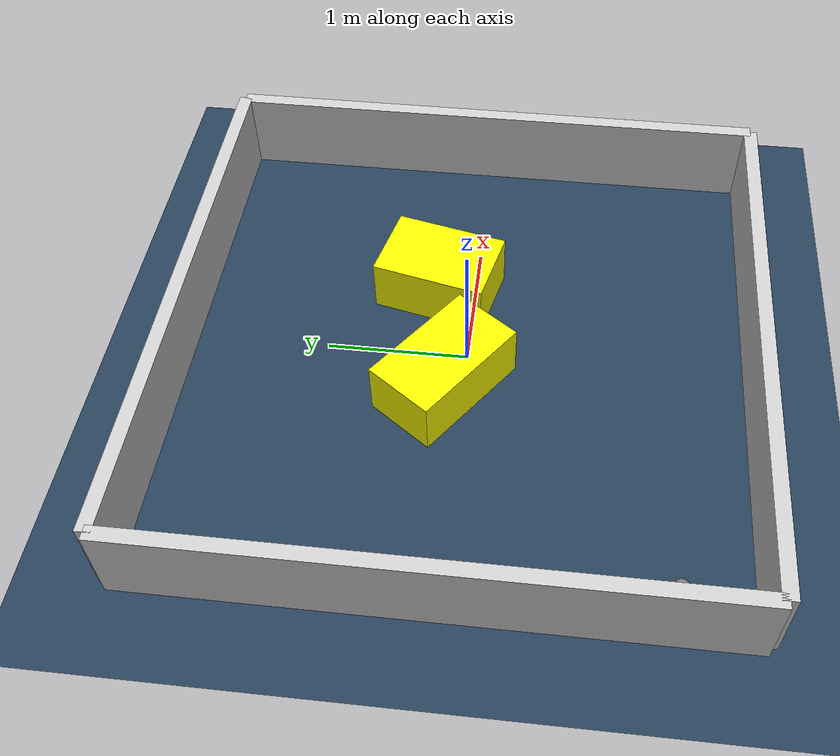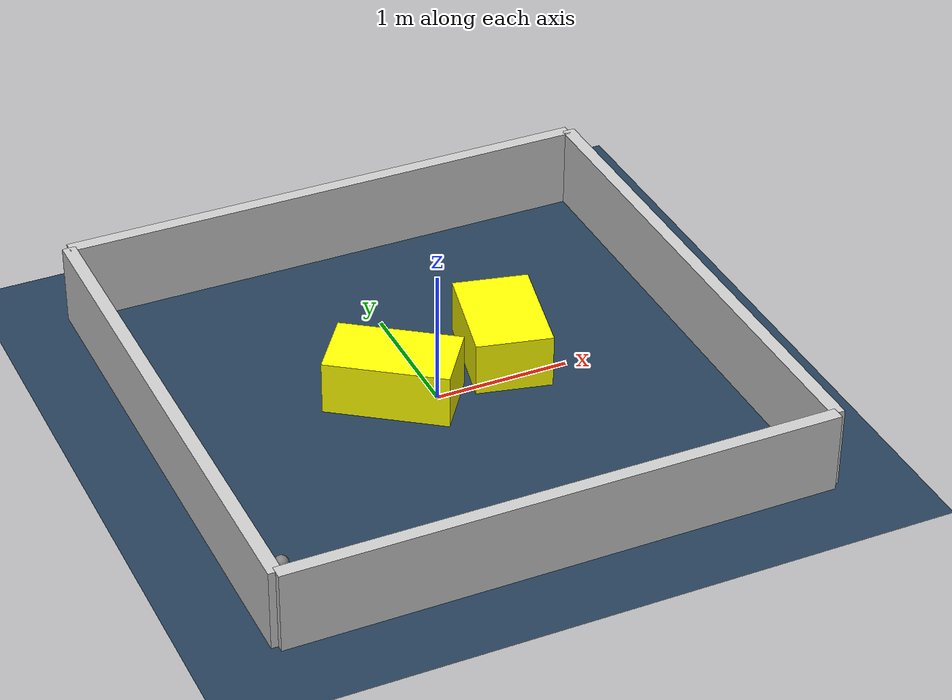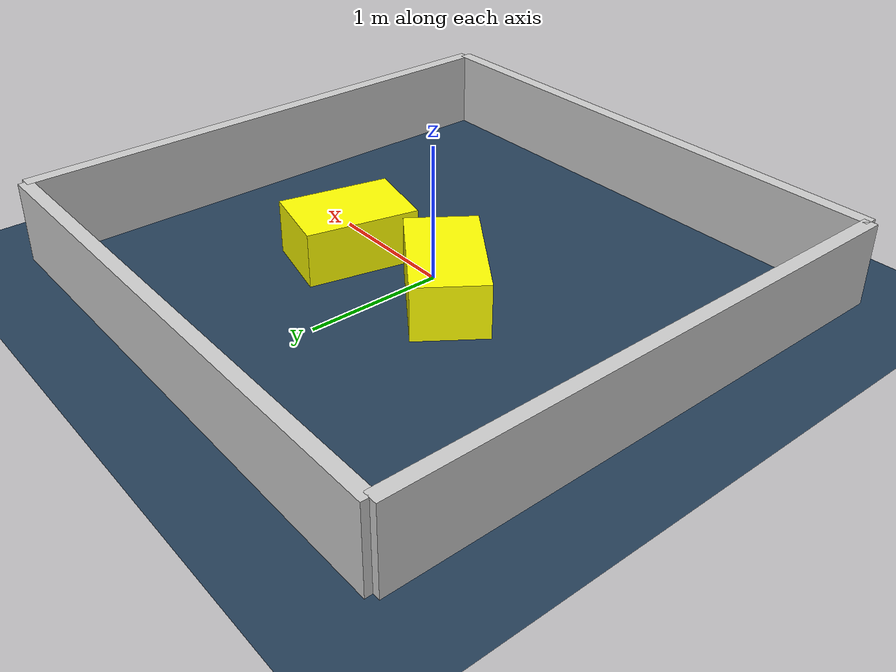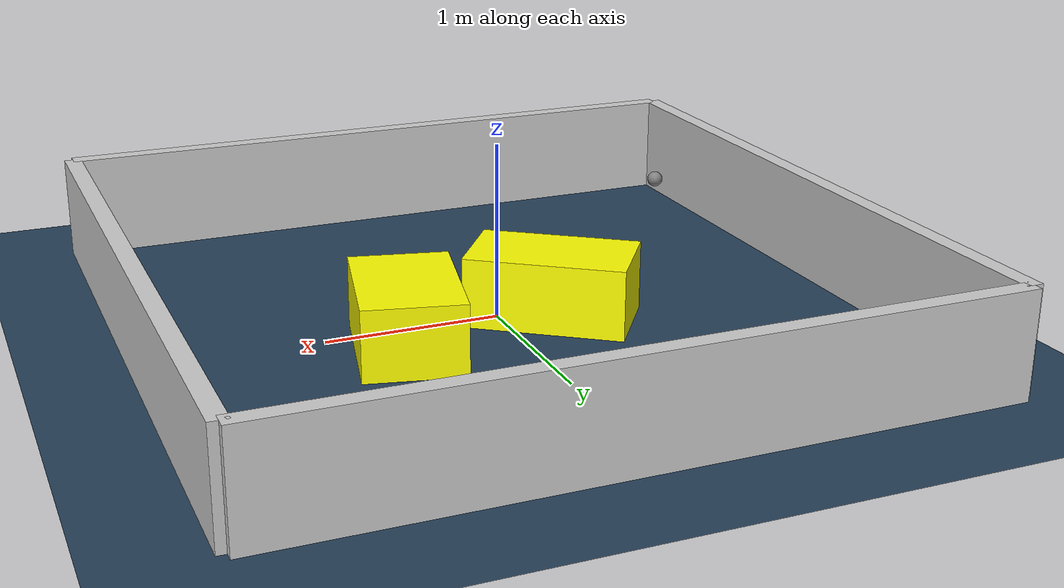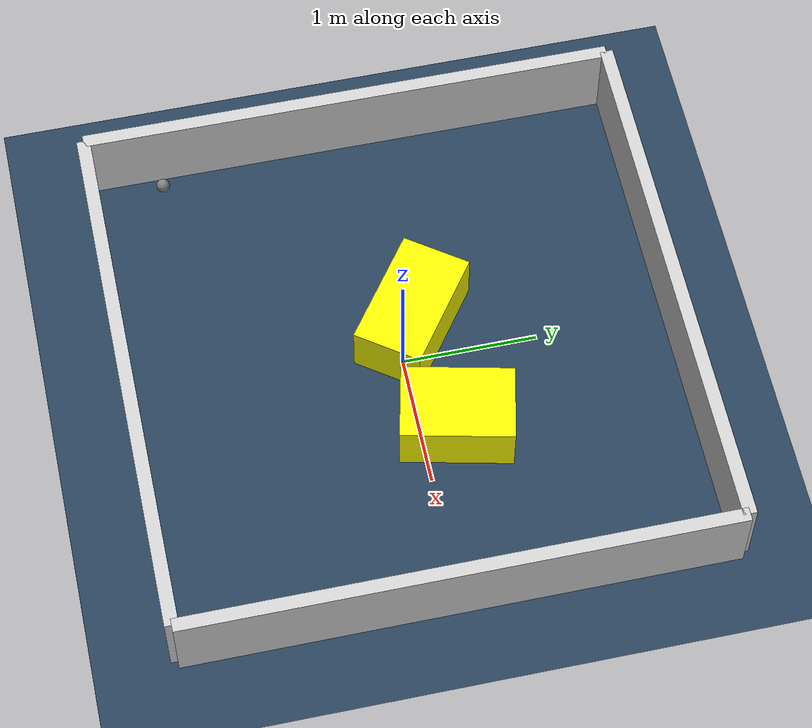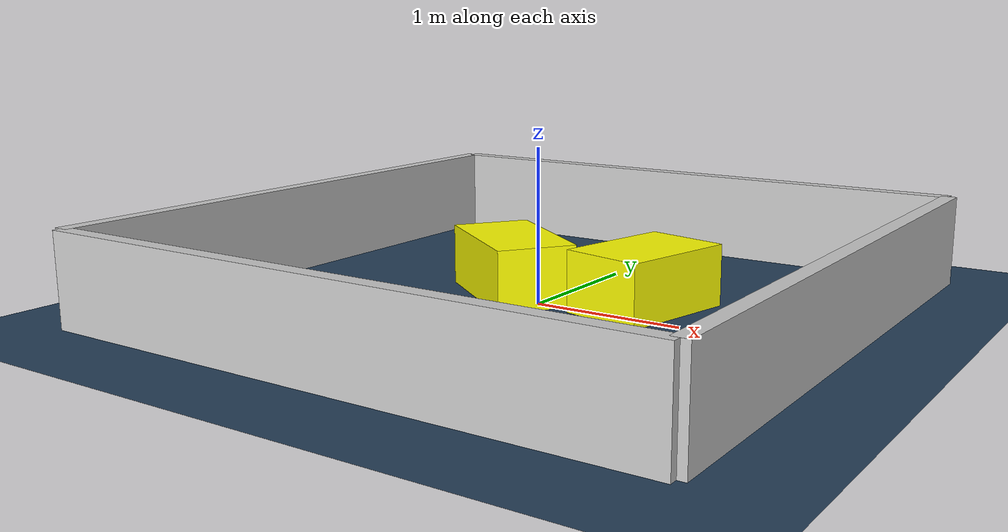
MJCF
<?xml version="1.0" ?>
<mujoco model="generated_environment">
  <option timestep="0.01" integrator="RK4" cone="elliptic"/>
  <default>
    <geom density="1"/>
  </default>
  <asset>
    <texture builtin="gradient" height="3072" rgb1="0.3 0.5 0.7" rgb2="0 0 0" type="skybox" width="512"/>
    <texture builtin="checker" height="300" mark="edge" markrgb="0.8 0.8 0.8" name="groundplane" rgb1="0.2 0.3 0.4" rgb2="0.1 0.2 0.3" type="2d" width="300"/>
    <material name="groundplane" reflectance="0.2" texrepeat="5 5" texture="groundplane" texuniform="true"/>
    <material name="robot" rgba="0.0 1.0 0.0 1"/>
  </asset>
  <worldbody>
    <light dir="0 0 -1" directional="true" pos="0 0 1.5"/>
    <geom condim="4" friction="1.0 0.005 0.001" material="groundplane" name="floor" size="0 0 0.05" type="plane"/>
    <body name="walls">
      <geom name="wall_1" condim="4" pos="-2.0 0.0 0.3" rgba="0.800000011920929 0.800000011920929 0.800000011920929 1.0" size="0.05 2.0 0.3" type="box"/>
      <geom name="wall_2" condim="4" pos="2.0 0.0 0.3" rgba="0.800000011920929 0.800000011920929 0.800000011920929 1.0" size="0.05 2.0 0.3" type="box"/>
      <geom name="wall_3" condim="4" pos="0.0 -2.0 0.3" rgba="0.800000011920929 0.800000011920929 0.800000011920929 1.0" size="2.0 0.05 0.3" type="box"/>
      <geom name="wall_4" condim="4" pos="0.0 2.0 0.3" rgba="0.800000011920929 0.800000011920929 0.800000011920929 1.0" size="2.0 0.05 0.3" type="box"/>
    </body>
    <body name="robot">
      <joint name="joint_x" type="slide" pos="0 0 0" axis="1 0 0"/>
      <joint name="joint_y" type="slide" pos="0 0 0" axis="0 1 0"/>
      <geom name="robot" type="sphere" pos="-1.7604721617129895 -1.469536369030142 0.2" size="0.05" mass="5." friction="1.0 0.005 0.0001" condim="4"/>
      <site name="sensor_ball"/>
    </body>
    <body name="obstacle_1_movable">
      <geom name="obstacle_1_movable" condim="4" pos="-0.28135873517296606 0.12768538608711566 0.2" euler="0 0 324.3683644018435" friction="1.0 0.005 0.001" rgba="1 1 0 1" size="0.45305845377103665 0.26157473927068897 0.2" type="box" mass="0.1"/>
      <joint type="free"/>
    </body>
    <body name="obstacle_2_movable">
      <geom name="obstacle_2_movable" condim="4" pos="0.6223807220367059 0.26585849413725504 0.2" euler="0 0 257.1810013158113" friction="1.0 0.005 0.001" rgba="1 1 0 1" size="0.4094547991207207 0.279038125642235 0.2" type="box" mass="0.1"/>
      <joint type="free"/>
    </body>
  </worldbody>
  <actuator>
    <motor name="actuator_x" joint="joint_x" gear="1" ctrlrange="-1 1"/>
    <motor name="actuator_y" joint="joint_y" gear="1" ctrlrange="-1 1"/>
  </actuator>
</mujoco>
